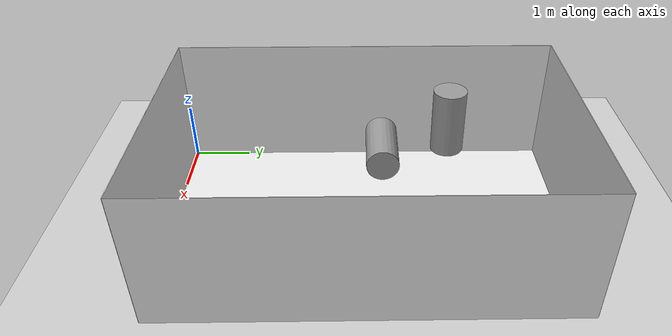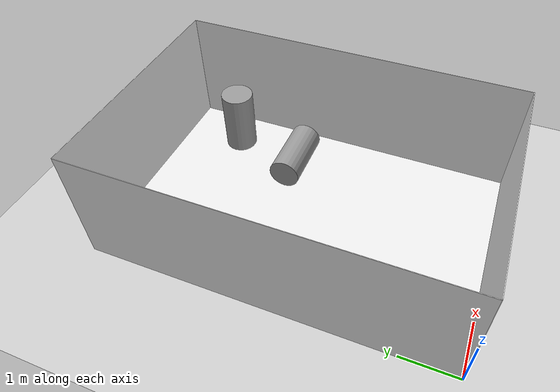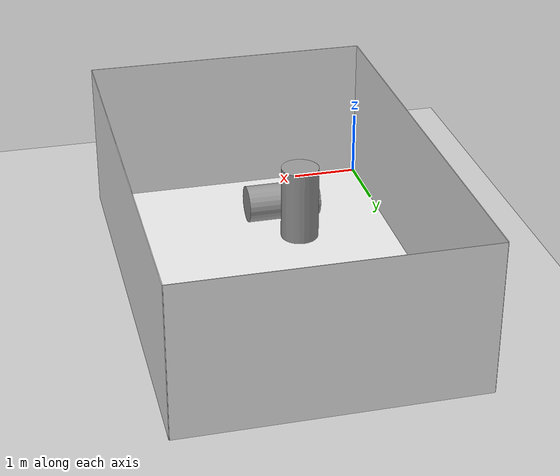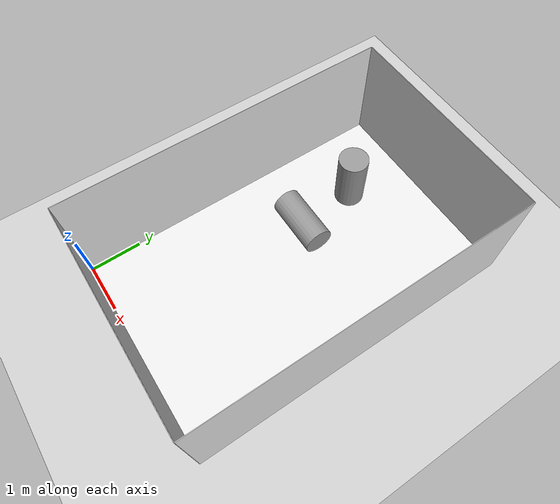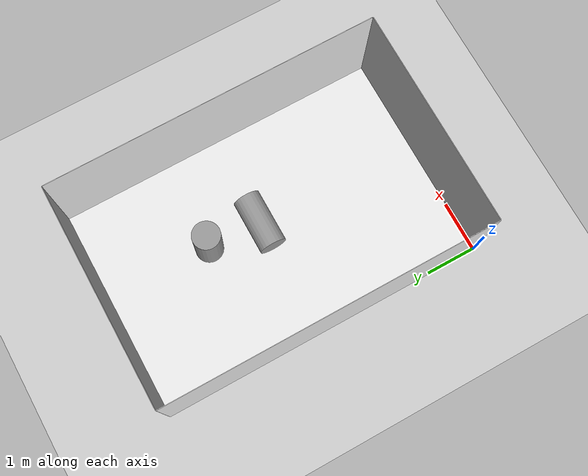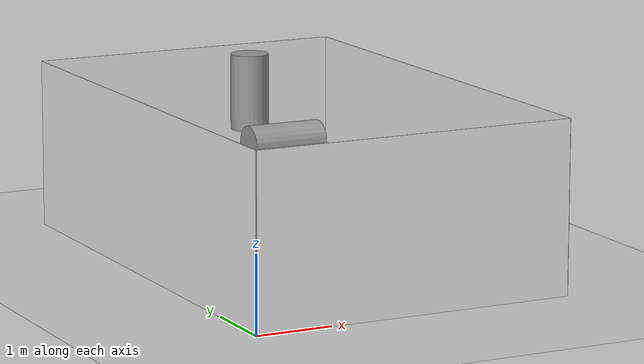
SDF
<?xml version="1.0" ?>
<sdf version="1.6">
  <world name="default">
    <include>
      <uri>model://ground_plane</uri>
    </include>
    <include>
      <uri>model://sun</uri>
    </include>

    <gui>
      <camera name='user_camera'>
        <pose>9.0 3.4 7.5 0.0 0.75 3.1</pose>
      </camera>
    </gui>

    <!-- basement tank -->
    <include>
      <uri>model://basement_tank</uri>
      <pose>0 0 0 0 0 0</pose>
      <static>true</static>
    </include>

    <!-- cylinder target 1 -->
    <include>
      <uri>model://cylinder_target</uri>
      <name>cylinder_target1</name>
      <pose>2.1 4.5 2.0 0 0 0</pose>
      <static>true</static>
    </include>

    <!-- cylinder target 2 -->
    <include>
      <uri>model://cylinder_target</uri>
      <name>cylinder_target2</name>
      <pose>2.1 3.5 1.5 0 1.5709 0</pose>
      <static>true</static>
    </include>

  </world>
</sdf>

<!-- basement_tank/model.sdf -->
<sdf version='1.6'>
  <model name='basement_tank_model'>
    <link name='basement_tank'>
      <inertial>
        <mass>1</mass>
      </inertial>

      <collision name='bottom'>
        <laser_retro>50</laser_retro>
        <pose frame=''>2.135 3.27 0.005 0 -0 0</pose>
        <geometry>
          <box>
            <size>4.27 6.54 0.01</size>
          </box>
        </geometry>
      </collision>
      <visual name='visual1'>
        <laser_retro>50</laser_retro>
        <pose frame=''>2.135 3.27 0.005 0 -0 0</pose>
        <geometry>
          <box>
            <size>4.27 6.54 0.01</size>
          </box>
        </geometry>
        <material>
          <script>
            <uri>file://media/materials/scripts/gazebo.material</uri>
            <name>Gazebo/White</name>
          </script>
        </material>
      </visual>

      <collision name='left_side'>
        <laser_retro>50</laser_retro>
        <pose frame=''>-0.005 3.27 1.12 0 -0 0</pose>
        <geometry>
          <box>
            <size>0.01 6.54 2.24</size>
          </box>
        </geometry>
      </collision>
      <visual name='visual2'>
        <laser_retro>50</laser_retro>
        <pose frame=''>-0.005 3.27 1.12 0 -0 0</pose>
        <geometry>
          <box>
            <size>0.01 6.54 2.24</size>
          </box>
        </geometry>
        <material>
          <script>
            <uri>file://media/materials/scripts/gazebo.material</uri>
            <name>Gazebo/White</name>
          </script>
        </material>
      </visual>

      <collision name='right_side'>
        <laser_retro>50</laser_retro>
        <pose frame=''>4.275 3.27 1.12 0 -0 0</pose>
        <geometry>
          <box>
            <size>0.01 6.54 2.24</size>
          </box>
        </geometry>
      </collision>
      <visual name='visual3'>
        <laser_retro>50</laser_retro>
        <pose frame=''>4.275 3.27 1.12 0 -0 0</pose>
        <geometry>
          <box>
            <size>0.01 6.54 2.24</size>
          </box>
        </geometry>
        <material>
          <script>
            <uri>file://media/materials/scripts/gazebo.material</uri>
            <name>Gazebo/White</name>
          </script>
        </material>
      </visual>

      <collision name='front_side'>
        <laser_retro>50</laser_retro>
        <pose frame=''>2.135 -0.005 1.12 0 -0 0</pose>
        <geometry>
          <box>
            <size>4.27 0.01 2.24</size>
          </box>
        </geometry>
      </collision>
      <visual name='visual4'>
        <laser_retro>50</laser_retro>
        <pose frame=''>2.135 -0.005 1.12 0 -0 0</pose>
        <geometry>
          <box>
            <size>4.27 0.01 2.24</size>
          </box>
        </geometry>
        <material>
          <script>
            <uri>file://media/materials/scripts/gazebo.material</uri>
            <name>Gazebo/White</name>
          </script>
        </material>
      </visual>

      <collision name='back_side'>
        <laser_retro>50</laser_retro>
        <pose frame=''>2.135 6.545 1.12 0 -0 0</pose>
        <geometry>
          <box>
            <size>4.27 0.01 2.24</size>
          </box>
        </geometry>
      </collision>
      <visual name='visual5'>
        <laser_retro>50</laser_retro>
        <pose frame=''>2.135 6.545 1.12 0 -0 0</pose>
        <geometry>
          <box>
            <size>4.27 0.01 2.24</size>
          </box>
        </geometry>
        <material>
          <script>
            <uri>file://media/materials/scripts/gazebo.material</uri>
            <name>Gazebo/White</name>
          </script>
        </material>
      </visual>

    </link>
  </model>
</sdf>

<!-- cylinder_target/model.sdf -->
<sdf version="1.6">
  <model name ='cylinder_target'>
    <link name='link'>
      <inertial>
        <mass>1</mass>
        <inertia>
          <ixx>0.145833</ixx>
          <ixy>0</ixy>
          <ixz>0</ixz>
          <iyy>0.145833</iyy>
          <iyz>0</iyz>
          <izz>0.125</izz>
        </inertia>
        <pose frame=''>0 0 0 0 -0 0</pose>
      </inertial>
      <collision name='cylinder'>
        <laser_retro>255</laser_retro>
        <geometry>
          <cylinder>
            <radius>0.25</radius>
            <length>1</length>
          </cylinder>
        </geometry>
        <max_contacts>10</max_contacts>
        <surface>
          <contact>
            <ode/>
          </contact>
          <bounce/>
          <friction>
            <torsional>
              <ode/>
            </torsional>
            <ode/>
          </friction>
        </surface>
      </collision>
      <visual name='visual'>
        <laser_retro>255</laser_retro>
        <geometry>
          <cylinder>
            <radius>0.25</radius>
            <length>1</length>
          </cylinder>
        </geometry>
        <material>
          <script>
            <name>Gazebo/Grey</name>
            <uri>file://media/materials/scripts/gazebo.material</uri>
          </script>
        </material>
      </visual>
      <self_collide>0</self_collide>
      <enable_wind>0</enable_wind>
      <kinematic>0</kinematic>
    </link>
  </model>
</sdf>
